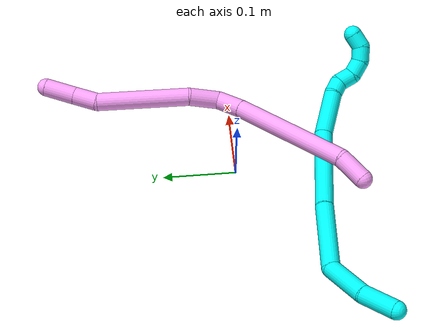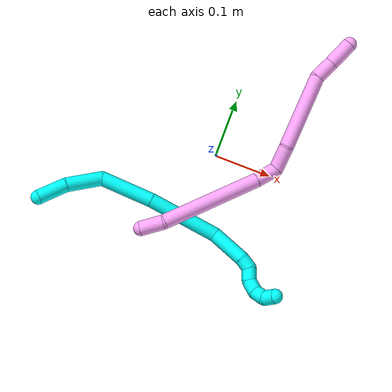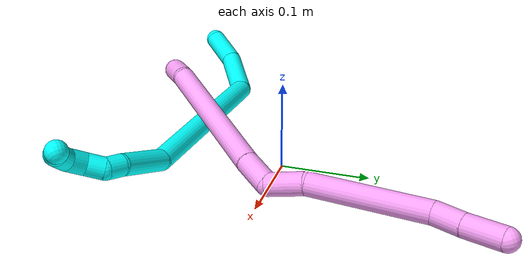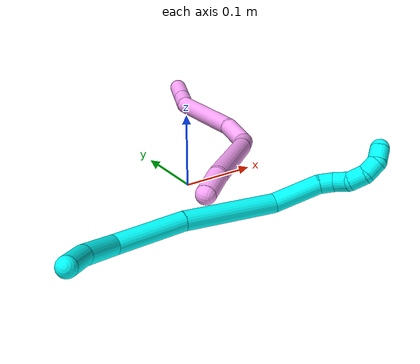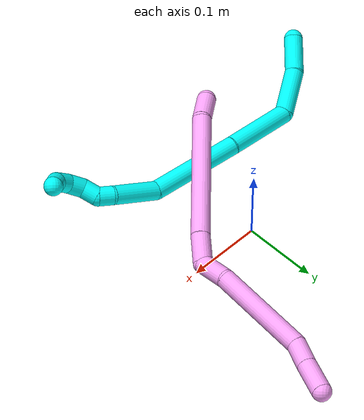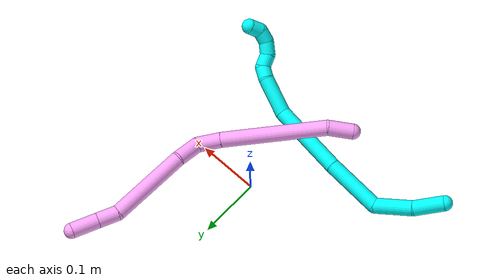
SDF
<sdf version="1.7">
 <world name="default">
  <model name="3">
   <static>0</static>
   <link name="3">
    <collision name="collision-cylinder-e_1_1_4">
     <pose>0.004738 0.006474 -0.023976 -2.87787 0.188524 -1.23854</pose>
     <geometry><cylinder><radius>0.0125</radius><length>0.050564</length></cylinder></geometry>
     <surface>
      <friction><ode><mu>1.16</mu><mu2>1.16</mu2><slip1>0</slip1><slip2>0</slip2></ode></friction>
      <contact><ode><kp>1e+06</kp><kd>1</kd><max_vel>0</max_vel><min_depth>0.001</min_depth></ode></contact>
     </surface>
    </collision>
    <visual name="visual-cylinder-e_1_1_4">
     <pose>0.004738 0.006474 -0.023976 -2.87787 0.188524 -1.23854</pose>
     <geometry><cylinder><radius>0.0125</radius><length>0.050564</length></cylinder></geometry>
     <material><ambient>0.003922 1 0.996078 1</ambient></material>
    </visual>
    <collision name="collision-cylinder-e_2_4_5">
     <pose>0.02131 0.016194 -0.077117 -3.03073 0.383308 -2.58455</pose>
     <geometry><cylinder><radius>0.0125</radius><length>0.063284</length></cylinder></geometry>
     <surface>
      <friction><ode><mu>1.16</mu><mu2>1.16</mu2><slip1>0</slip1><slip2>0</slip2></ode></friction>
      <contact><ode><kp>1e+06</kp><kd>1</kd><max_vel>0</max_vel><min_depth>0.001</min_depth></ode></contact>
     </surface>
    </collision>
    <visual name="visual-cylinder-e_2_4_5">
     <pose>0.02131 0.016194 -0.077117 -3.03073 0.383308 -2.58455</pose>
     <geometry><cylinder><radius>0.0125</radius><length>0.063284</length></cylinder></geometry>
     <material><ambient>0.003922 1 0.996078 1</ambient></material>
    </visual>
    <collision name="collision-cylinder-e_3_5_6">
     <pose>0.07338 0.016556 -0.129421 3.01757 1.04557 2.92693</pose>
     <geometry><cylinder><radius>0.0125</radius><length>0.093009</length></cylinder></geometry>
     <surface>
      <friction><ode><mu>1.16</mu><mu2>1.16</mu2><slip1>0</slip1><slip2>0</slip2></ode></friction>
      <contact><ode><kp>1e+06</kp><kd>1</kd><max_vel>0</max_vel><min_depth>0.001</min_depth></ode></contact>
     </surface>
    </collision>
    <visual name="visual-cylinder-e_3_5_6">
     <pose>0.07338 0.016556 -0.129421 3.01757 1.04557 2.92693</pose>
     <geometry><cylinder><radius>0.0125</radius><length>0.093009</length></cylinder></geometry>
     <material><ambient>0.003922 1 0.996078 1</ambient></material>
    </visual>
    <collision name="collision-cylinder-e_4_6_7">
     <pose>0.166427 0.00204 -0.183348 2.78037 1.01349 2.50598</pose>
     <geometry><cylinder><radius>0.0125</radius><length>0.124453</length></cylinder></geometry>
     <surface>
      <friction><ode><mu>1.16</mu><mu2>1.16</mu2><slip1>0</slip1><slip2>0</slip2></ode></friction>
      <contact><ode><kp>1e+06</kp><kd>1</kd><max_vel>0</max_vel><min_depth>0.001</min_depth></ode></contact>
     </surface>
    </collision>
    <visual name="visual-cylinder-e_4_6_7">
     <pose>0.166427 0.00204 -0.183348 2.78037 1.01349 2.50598</pose>
     <geometry><cylinder><radius>0.0125</radius><length>0.124453</length></cylinder></geometry>
     <material><ambient>0.003922 1 0.996078 1</ambient></material>
    </visual>
    <collision name="collision-cylinder-e_5_7_8">
     <pose>0.250146 -0.012168 -0.218253 2.58246 1.41494 2.4938</pose>
     <geometry><cylinder><radius>0.0125</radius><length>0.062577</length></cylinder></geometry>
     <surface>
      <friction><ode><mu>1.16</mu><mu2>1.16</mu2><slip1>0</slip1><slip2>0</slip2></ode></friction>
      <contact><ode><kp>1e+06</kp><kd>1</kd><max_vel>0</max_vel><min_depth>0.001</min_depth></ode></contact>
     </surface>
    </collision>
    <visual name="visual-cylinder-e_5_7_8">
     <pose>0.250146 -0.012168 -0.218253 2.58246 1.41494 2.4938</pose>
     <geometry><cylinder><radius>0.0125</radius><length>0.062577</length></cylinder></geometry>
     <material><ambient>0.003922 1 0.996078 1</ambient></material>
    </visual>
    <collision name="collision-cylinder-e_6_8_9">
     <pose>0.290566 -0.018276 -0.223282 1.8233 1.20463 1.45168</pose>
     <geometry><cylinder><radius>0.0125</radius><length>0.020373</length></cylinder></geometry>
     <surface>
      <friction><ode><mu>1.16</mu><mu2>1.16</mu2><slip1>0</slip1><slip2>0</slip2></ode></friction>
      <contact><ode><kp>1e+06</kp><kd>1</kd><max_vel>0</max_vel><min_depth>0.001</min_depth></ode></contact>
     </surface>
    </collision>
    <visual name="visual-cylinder-e_6_8_9">
     <pose>0.290566 -0.018276 -0.223282 1.8233 1.20463 1.45168</pose>
     <geometry><cylinder><radius>0.0125</radius><length>0.020373</length></cylinder></geometry>
     <material><ambient>0.003922 1 0.996078 1</ambient></material>
    </visual>
    <collision name="collision-cylinder-e_7_9_10">
     <pose>0.307953 -0.027057 -0.218477 0.742966 0.79278 0.32326</pose>
     <geometry><cylinder><radius>0.0125</radius><length>0.022115</length></cylinder></geometry>
     <surface>
      <friction><ode><mu>1.16</mu><mu2>1.16</mu2><slip1>0</slip1><slip2>0</slip2></ode></friction>
      <contact><ode><kp>1e+06</kp><kd>1</kd><max_vel>0</max_vel><min_depth>0.001</min_depth></ode></contact>
     </surface>
    </collision>
    <visual name="visual-cylinder-e_7_9_10">
     <pose>0.307953 -0.027057 -0.218477 0.742966 0.79278 0.32326</pose>
     <geometry><cylinder><radius>0.0125</radius><length>0.022115</length></cylinder></geometry>
     <material><ambient>0.003922 1 0.996078 1</ambient></material>
    </visual>
    <collision name="collision-cylinder-e_8_10_11">
     <pose>0.326503 -0.03355 -0.210137 0.442183 1.3052 0.340262</pose>
     <geometry><cylinder><radius>0.0125</radius><length>0.022122</length></cylinder></geometry>
     <surface>
      <friction><ode><mu>1.16</mu><mu2>1.16</mu2><slip1>0</slip1><slip2>0</slip2></ode></friction>
      <contact><ode><kp>1e+06</kp><kd>1</kd><max_vel>0</max_vel><min_depth>0.001</min_depth></ode></contact>
     </surface>
    </collision>
    <visual name="visual-cylinder-e_8_10_11">
     <pose>0.326503 -0.03355 -0.210137 0.442183 1.3052 0.340262</pose>
     <geometry><cylinder><radius>0.0125</radius><length>0.022122</length></cylinder></geometry>
     <material><ambient>0.003922 1 0.996078 1</ambient></material>
    </visual>
    <collision name="collision-cylinder-e_9_11_12">
     <pose>0.347088 -0.031614 -0.207337 -1.51535 1.26005 -1.2077</pose>
     <geometry><cylinder><radius>0.0125</radius><length>0.02082</length></cylinder></geometry>
     <surface>
      <friction><ode><mu>1.16</mu><mu2>1.16</mu2><slip1>0</slip1><slip2>0</slip2></ode></friction>
      <contact><ode><kp>1e+06</kp><kd>1</kd><max_vel>0</max_vel><min_depth>0.001</min_depth></ode></contact>
     </surface>
    </collision>
    <visual name="visual-cylinder-e_9_11_12">
     <pose>0.347088 -0.031614 -0.207337 -1.51535 1.26005 -1.2077</pose>
     <geometry><cylinder><radius>0.0125</radius><length>0.02082</length></cylinder></geometry>
     <material><ambient>0.003922 1 0.996078 1</ambient></material>
    </visual>
    <collision name="collision-cylinder-e_10_12_2">
     <pose>0.363429 -0.02122 -0.210839 -2.04223 0.670968 -1.03477</pose>
     <geometry><cylinder><radius>0.0125</radius><length>0.020683</length></cylinder></geometry>
     <surface>
      <friction><ode><mu>1.16</mu><mu2>1.16</mu2><slip1>0</slip1><slip2>0</slip2></ode></friction>
      <contact><ode><kp>1e+06</kp><kd>1</kd><max_vel>0</max_vel><min_depth>0.001</min_depth></ode></contact>
     </surface>
    </collision>
    <visual name="visual-cylinder-e_10_12_2">
     <pose>0.363429 -0.02122 -0.210839 -2.04223 0.670968 -1.03477</pose>
     <geometry><cylinder><radius>0.0125</radius><length>0.020683</length></cylinder></geometry>
     <material><ambient>0.003922 1 0.996078 1</ambient></material>
    </visual>
    <collision name="collision-sphere-2">
     <pose>0.369859 -0.014004 -0.214517 0 -0 0</pose>
     <geometry><sphere><radius>0.0125</radius></sphere></geometry>
     <surface>
      <friction><ode><mu>1.16</mu><mu2>1.16</mu2><slip1>0</slip1><slip2>0</slip2></ode></friction>
      <contact><ode><kp>1e+06</kp><kd>1</kd><max_vel>0</max_vel><min_depth>0.001</min_depth></ode></contact>
     </surface>
    </collision>
    <visual name="visual-sphere-2">
     <pose>0.369859 -0.014004 -0.214517 0 -0 0</pose>
     <geometry><sphere><radius>0.0125</radius></sphere></geometry>
     <material><ambient>0.003922 1 0.996078 1</ambient></material>
    </visual>
    <collision name="collision-sphere-12">
     <pose>0.357 -0.028436 -0.20716 0 -0 0</pose>
     <geometry><sphere><radius>0.0125</radius></sphere></geometry>
     <surface>
      <friction><ode><mu>1.16</mu><mu2>1.16</mu2><slip1>0</slip1><slip2>0</slip2></ode></friction>
      <contact><ode><kp>1e+06</kp><kd>1</kd><max_vel>0</max_vel><min_depth>0.001</min_depth></ode></contact>
     </surface>
    </collision>
    <visual name="visual-sphere-12">
     <pose>0.357 -0.028436 -0.20716 0 -0 0</pose>
     <geometry><sphere><radius>0.0125</radius></sphere></geometry>
     <material><ambient>0.003922 1 0.996078 1</ambient></material>
    </visual>
    <collision name="collision-sphere-11">
     <pose>0.337176 -0.034792 -0.207513 0 -0 0</pose>
     <geometry><sphere><radius>0.0125</radius></sphere></geometry>
     <surface>
      <friction><ode><mu>1.16</mu><mu2>1.16</mu2><slip1>0</slip1><slip2>0</slip2></ode></friction>
      <contact><ode><kp>1e+06</kp><kd>1</kd><max_vel>0</max_vel><min_depth>0.001</min_depth></ode></contact>
     </surface>
    </collision>
    <visual name="visual-sphere-11">
     <pose>0.337176 -0.034792 -0.207513 0 -0 0</pose>
     <geometry><sphere><radius>0.0125</radius></sphere></geometry>
     <material><ambient>0.003922 1 0.996078 1</ambient></material>
    </visual>
    <collision name="collision-sphere-10">
     <pose>0.31583 -0.032308 -0.212761 0 -0 0</pose>
     <geometry><sphere><radius>0.0125</radius></sphere></geometry>
     <surface>
      <friction><ode><mu>1.16</mu><mu2>1.16</mu2><slip1>0</slip1><slip2>0</slip2></ode></friction>
      <contact><ode><kp>1e+06</kp><kd>1</kd><max_vel>0</max_vel><min_depth>0.001</min_depth></ode></contact>
     </surface>
    </collision>
    <visual name="visual-sphere-10">
     <pose>0.31583 -0.032308 -0.212761 0 -0 0</pose>
     <geometry><sphere><radius>0.0125</radius></sphere></geometry>
     <material><ambient>0.003922 1 0.996078 1</ambient></material>
    </visual>
    <collision name="collision-sphere-9">
     <pose>0.300077 -0.021807 -0.224193 0 -0 0</pose>
     <geometry><sphere><radius>0.0125</radius></sphere></geometry>
     <surface>
      <friction><ode><mu>1.16</mu><mu2>1.16</mu2><slip1>0</slip1><slip2>0</slip2></ode></friction>
      <contact><ode><kp>1e+06</kp><kd>1</kd><max_vel>0</max_vel><min_depth>0.001</min_depth></ode></contact>
     </surface>
    </collision>
    <visual name="visual-sphere-9">
     <pose>0.300077 -0.021807 -0.224193 0 -0 0</pose>
     <geometry><sphere><radius>0.0125</radius></sphere></geometry>
     <material><ambient>0.003922 1 0.996078 1</ambient></material>
    </visual>
    <collision name="collision-sphere-4">
     <pose>0.009476 0.012948 -0.047951 0 -0 0</pose>
     <geometry><sphere><radius>0.0125</radius></sphere></geometry>
     <surface>
      <friction><ode><mu>1.16</mu><mu2>1.16</mu2><slip1>0</slip1><slip2>0</slip2></ode></friction>
      <contact><ode><kp>1e+06</kp><kd>1</kd><max_vel>0</max_vel><min_depth>0.001</min_depth></ode></contact>
     </surface>
    </collision>
    <visual name="visual-sphere-4">
     <pose>0.009476 0.012948 -0.047951 0 -0 0</pose>
     <geometry><sphere><radius>0.0125</radius></sphere></geometry>
     <material><ambient>0.003922 1 0.996078 1</ambient></material>
    </visual>
    <collision name="collision-sphere-1">
     <geometry><sphere><radius>0.0125</radius></sphere></geometry>
     <surface>
      <friction><ode><mu>1.16</mu><mu2>1.16</mu2><slip1>0</slip1><slip2>0</slip2></ode></friction>
      <contact><ode><kp>1e+06</kp><kd>1</kd><max_vel>0</max_vel><min_depth>0.001</min_depth></ode></contact>
     </surface>
    </collision>
    <visual name="visual-sphere-1">
     <geometry><sphere><radius>0.0125</radius></sphere></geometry>
     <material><ambient>0.003922 1 0.996078 1</ambient></material>
    </visual>
    <collision name="collision-sphere-8">
     <pose>0.281055 -0.014744 -0.22237 0 -0 0</pose>
     <geometry><sphere><radius>0.0125</radius></sphere></geometry>
     <surface>
      <friction><ode><mu>1.16</mu><mu2>1.16</mu2><slip1>0</slip1><slip2>0</slip2></ode></friction>
      <contact><ode><kp>1e+06</kp><kd>1</kd><max_vel>0</max_vel><min_depth>0.001</min_depth></ode></contact>
     </surface>
    </collision>
    <visual name="visual-sphere-8">
     <pose>0.281055 -0.014744 -0.22237 0 -0 0</pose>
     <geometry><sphere><radius>0.0125</radius></sphere></geometry>
     <material><ambient>0.003922 1 0.996078 1</ambient></material>
    </visual>
    <collision name="collision-sphere-5">
     <pose>0.033144 0.019441 -0.106283 0 -0 0</pose>
     <geometry><sphere><radius>0.0125</radius></sphere></geometry>
     <surface>
      <friction><ode><mu>1.16</mu><mu2>1.16</mu2><slip1>0</slip1><slip2>0</slip2></ode></friction>
      <contact><ode><kp>1e+06</kp><kd>1</kd><max_vel>0</max_vel><min_depth>0.001</min_depth></ode></contact>
     </surface>
    </collision>
    <visual name="visual-sphere-5">
     <pose>0.033144 0.019441 -0.106283 0 -0 0</pose>
     <geometry><sphere><radius>0.0125</radius></sphere></geometry>
     <material><ambient>0.003922 1 0.996078 1</ambient></material>
    </visual>
    <collision name="collision-sphere-6">
     <pose>0.113616 0.013672 -0.15256 0 -0 0</pose>
     <geometry><sphere><radius>0.0125</radius></sphere></geometry>
     <surface>
      <friction><ode><mu>1.16</mu><mu2>1.16</mu2><slip1>0</slip1><slip2>0</slip2></ode></friction>
      <contact><ode><kp>1e+06</kp><kd>1</kd><max_vel>0</max_vel><min_depth>0.001</min_depth></ode></contact>
     </surface>
    </collision>
    <visual name="visual-sphere-6">
     <pose>0.113616 0.013672 -0.15256 0 -0 0</pose>
     <geometry><sphere><radius>0.0125</radius></sphere></geometry>
     <material><ambient>0.003922 1 0.996078 1</ambient></material>
    </visual>
    <collision name="collision-sphere-7">
     <pose>0.219237 -0.009592 -0.214136 0 -0 0</pose>
     <geometry><sphere><radius>0.0125</radius></sphere></geometry>
     <surface>
      <friction><ode><mu>1.16</mu><mu2>1.16</mu2><slip1>0</slip1><slip2>0</slip2></ode></friction>
      <contact><ode><kp>1e+06</kp><kd>1</kd><max_vel>0</max_vel><min_depth>0.001</min_depth></ode></contact>
     </surface>
    </collision>
    <visual name="visual-sphere-7">
     <pose>0.219237 -0.009592 -0.214136 0 -0 0</pose>
     <geometry><sphere><radius>0.0125</radius></sphere></geometry>
     <material><ambient>0.003922 1 0.996078 1</ambient></material>
    </visual>
    <inertial>
     <pose>0.15895 -0.000851 -0.154625 0 -0 0</pose>
     <mass>0.5</mass>
     <inertia>
      <ixx>-5.3e-05</ixx>
      <ixy>0</ixy>
      <ixz>0</ixz>
      <iyy>0.000307</iyy>
      <iyz>0</iyz>
      <izz>-0.000227</izz>
     </inertia>
    </inertial>
   </link>
   <pose>-0.254771 -0.171972 0.044898 0.871242 -0.457654 -0.397827</pose>
  </model>
  <model name="4">
   <static>0</static>
   <link name="4">
    <collision name="collision-cylinder-e_1_1_4">
     <pose>0.013845 0.014269 0.00273 -1.38175 0.761332 -0.639075</pose>
     <geometry><cylinder><radius>0.0125</radius><length>0.040137</length></cylinder></geometry>
     <surface>
      <friction><ode><mu>1.16</mu><mu2>1.16</mu2><slip1>0</slip1><slip2>0</slip2></ode></friction>
      <contact><ode><kp>1e+06</kp><kd>1</kd><max_vel>0</max_vel><min_depth>0.001</min_depth></ode></contact>
     </surface>
    </collision>
    <visual name="visual-cylinder-e_1_1_4">
     <pose>0.013845 0.014269 0.00273 -1.38175 0.761332 -0.639075</pose>
     <geometry><cylinder><radius>0.0125</radius><length>0.040137</length></cylinder></geometry>
     <material><ambient>1 0.65098 0.996078 1</ambient></material>
    </visual>
    <collision name="collision-cylinder-e_2_4_5">
     <pose>0.06127 0.105758 0.022386 -1.35502 0.401685 -0.324708</pose>
     <geometry><cylinder><radius>0.0125</radius><length>0.17178</length></cylinder></geometry>
     <surface>
      <friction><ode><mu>1.16</mu><mu2>1.16</mu2><slip1>0</slip1><slip2>0</slip2></ode></friction>
      <contact><ode><kp>1e+06</kp><kd>1</kd><max_vel>0</max_vel><min_depth>0.001</min_depth></ode></contact>
     </surface>
    </collision>
    <visual name="visual-cylinder-e_2_4_5">
     <pose>0.06127 0.105758 0.022386 -1.35502 0.401685 -0.324708</pose>
     <geometry><cylinder><radius>0.0125</radius><length>0.17178</length></cylinder></geometry>
     <material><ambient>1 0.65098 0.996078 1</ambient></material>
    </visual>
    <collision name="collision-cylinder-e_3_5_6">
     <pose>0.10178 0.200797 0.044796 -1.27223 0.355848 -0.264064</pose>
     <geometry><cylinder><radius>0.0125</radius><length>0.039777</length></cylinder></geometry>
     <surface>
      <friction><ode><mu>1.16</mu><mu2>1.16</mu2><slip1>0</slip1><slip2>0</slip2></ode></friction>
      <contact><ode><kp>1e+06</kp><kd>1</kd><max_vel>0</max_vel><min_depth>0.001</min_depth></ode></contact>
     </surface>
    </collision>
    <visual name="visual-cylinder-e_3_5_6">
     <pose>0.10178 0.200797 0.044796 -1.27223 0.355848 -0.264064</pose>
     <geometry><cylinder><radius>0.0125</radius><length>0.039777</length></cylinder></geometry>
     <material><ambient>1 0.65098 0.996078 1</ambient></material>
    </visual>
    <collision name="collision-cylinder-e_4_6_7">
     <pose>0.11654 0.227017 0.068032 -0.442082 0.379415 -0.086244</pose>
     <geometry><cylinder><radius>0.0125</radius><length>0.042288</length></cylinder></geometry>
     <surface>
      <friction><ode><mu>1.16</mu><mu2>1.16</mu2><slip1>0</slip1><slip2>0</slip2></ode></friction>
      <contact><ode><kp>1e+06</kp><kd>1</kd><max_vel>0</max_vel><min_depth>0.001</min_depth></ode></contact>
     </surface>
    </collision>
    <visual name="visual-cylinder-e_4_6_7">
     <pose>0.11654 0.227017 0.068032 -0.442082 0.379415 -0.086244</pose>
     <geometry><cylinder><radius>0.0125</radius><length>0.042288</length></cylinder></geometry>
     <material><ambient>1 0.65098 0.996078 1</ambient></material>
    </visual>
    <collision name="collision-cylinder-e_5_7_8">
     <pose>0.134837 0.272185 0.137496 -0.618048 0.163476 -0.052295</pose>
     <geometry><cylinder><radius>0.0125</radius><length>0.128612</length></cylinder></geometry>
     <surface>
      <friction><ode><mu>1.16</mu><mu2>1.16</mu2><slip1>0</slip1><slip2>0</slip2></ode></friction>
      <contact><ode><kp>1e+06</kp><kd>1</kd><max_vel>0</max_vel><min_depth>0.001</min_depth></ode></contact>
     </surface>
    </collision>
    <visual name="visual-cylinder-e_5_7_8">
     <pose>0.134837 0.272185 0.137496 -0.618048 0.163476 -0.052295</pose>
     <geometry><cylinder><radius>0.0125</radius><length>0.128612</length></cylinder></geometry>
     <material><ambient>1 0.65098 0.996078 1</ambient></material>
    </visual>
    <collision name="collision-cylinder-e_6_8_9">
     <pose>0.152186 0.321141 0.198702 -0.909117 0.419093 -0.207114</pose>
     <geometry><cylinder><radius>0.0125</radius><length>0.033833</length></cylinder></geometry>
     <surface>
      <friction><ode><mu>1.16</mu><mu2>1.16</mu2><slip1>0</slip1><slip2>0</slip2></ode></friction>
      <contact><ode><kp>1e+06</kp><kd>1</kd><max_vel>0</max_vel><min_depth>0.001</min_depth></ode></contact>
     </surface>
    </collision>
    <visual name="visual-cylinder-e_6_8_9">
     <pose>0.152186 0.321141 0.198702 -0.909117 0.419093 -0.207114</pose>
     <geometry><cylinder><radius>0.0125</radius><length>0.033833</length></cylinder></geometry>
     <material><ambient>1 0.65098 0.996078 1</ambient></material>
    </visual>
    <collision name="collision-cylinder-e_7_9_2">
     <pose>0.168578 0.348032 0.221164 -0.84793 0.45161 -0.206626</pose>
     <geometry><cylinder><radius>0.0125</radius><length>0.043572</length></cylinder></geometry>
     <surface>
      <friction><ode><mu>1.16</mu><mu2>1.16</mu2><slip1>0</slip1><slip2>0</slip2></ode></friction>
      <contact><ode><kp>1e+06</kp><kd>1</kd><max_vel>0</max_vel><min_depth>0.001</min_depth></ode></contact>
     </surface>
    </collision>
    <visual name="visual-cylinder-e_7_9_2">
     <pose>0.168578 0.348032 0.221164 -0.84793 0.45161 -0.206626</pose>
     <geometry><cylinder><radius>0.0125</radius><length>0.043572</length></cylinder></geometry>
     <material><ambient>1 0.65098 0.996078 1</ambient></material>
    </visual>
    <collision name="collision-sphere-2">
     <pose>0.178086 0.362732 0.234132 0 -0 0</pose>
     <geometry><sphere><radius>0.0125</radius></sphere></geometry>
     <surface>
      <friction><ode><mu>1.16</mu><mu2>1.16</mu2><slip1>0</slip1><slip2>0</slip2></ode></friction>
      <contact><ode><kp>1e+06</kp><kd>1</kd><max_vel>0</max_vel><min_depth>0.001</min_depth></ode></contact>
     </surface>
    </collision>
    <visual name="visual-sphere-2">
     <pose>0.178086 0.362732 0.234132 0 -0 0</pose>
     <geometry><sphere><radius>0.0125</radius></sphere></geometry>
     <material><ambient>1 0.65098 0.996078 1</ambient></material>
    </visual>
    <collision name="collision-sphere-9">
     <pose>0.15907 0.333333 0.208197 0 -0 0</pose>
     <geometry><sphere><radius>0.0125</radius></sphere></geometry>
     <surface>
      <friction><ode><mu>1.16</mu><mu2>1.16</mu2><slip1>0</slip1><slip2>0</slip2></ode></friction>
      <contact><ode><kp>1e+06</kp><kd>1</kd><max_vel>0</max_vel><min_depth>0.001</min_depth></ode></contact>
     </surface>
    </collision>
    <visual name="visual-sphere-9">
     <pose>0.15907 0.333333 0.208197 0 -0 0</pose>
     <geometry><sphere><radius>0.0125</radius></sphere></geometry>
     <material><ambient>1 0.65098 0.996078 1</ambient></material>
    </visual>
    <collision name="collision-sphere-4">
     <pose>0.02769 0.028538 0.00546 0 -0 0</pose>
     <geometry><sphere><radius>0.0125</radius></sphere></geometry>
     <surface>
      <friction><ode><mu>1.16</mu><mu2>1.16</mu2><slip1>0</slip1><slip2>0</slip2></ode></friction>
      <contact><ode><kp>1e+06</kp><kd>1</kd><max_vel>0</max_vel><min_depth>0.001</min_depth></ode></contact>
     </surface>
    </collision>
    <visual name="visual-sphere-4">
     <pose>0.02769 0.028538 0.00546 0 -0 0</pose>
     <geometry><sphere><radius>0.0125</radius></sphere></geometry>
     <material><ambient>1 0.65098 0.996078 1</ambient></material>
    </visual>
    <collision name="collision-sphere-1">
     <geometry><sphere><radius>0.0125</radius></sphere></geometry>
     <surface>
      <friction><ode><mu>1.16</mu><mu2>1.16</mu2><slip1>0</slip1><slip2>0</slip2></ode></friction>
      <contact><ode><kp>1e+06</kp><kd>1</kd><max_vel>0</max_vel><min_depth>0.001</min_depth></ode></contact>
     </surface>
    </collision>
    <visual name="visual-sphere-1">
     <geometry><sphere><radius>0.0125</radius></sphere></geometry>
     <material><ambient>1 0.65098 0.996078 1</ambient></material>
    </visual>
    <collision name="collision-sphere-8">
     <pose>0.145303 0.30895 0.189207 0 -0 0</pose>
     <geometry><sphere><radius>0.0125</radius></sphere></geometry>
     <surface>
      <friction><ode><mu>1.16</mu><mu2>1.16</mu2><slip1>0</slip1><slip2>0</slip2></ode></friction>
      <contact><ode><kp>1e+06</kp><kd>1</kd><max_vel>0</max_vel><min_depth>0.001</min_depth></ode></contact>
     </surface>
    </collision>
    <visual name="visual-sphere-8">
     <pose>0.145303 0.30895 0.189207 0 -0 0</pose>
     <geometry><sphere><radius>0.0125</radius></sphere></geometry>
     <material><ambient>1 0.65098 0.996078 1</ambient></material>
    </visual>
    <collision name="collision-sphere-5">
     <pose>0.094851 0.182979 0.039312 0 -0 0</pose>
     <geometry><sphere><radius>0.0125</radius></sphere></geometry>
     <surface>
      <friction><ode><mu>1.16</mu><mu2>1.16</mu2><slip1>0</slip1><slip2>0</slip2></ode></friction>
      <contact><ode><kp>1e+06</kp><kd>1</kd><max_vel>0</max_vel><min_depth>0.001</min_depth></ode></contact>
     </surface>
    </collision>
    <visual name="visual-sphere-5">
     <pose>0.094851 0.182979 0.039312 0 -0 0</pose>
     <geometry><sphere><radius>0.0125</radius></sphere></geometry>
     <material><ambient>1 0.65098 0.996078 1</ambient></material>
    </visual>
    <collision name="collision-sphere-6">
     <pose>0.108709 0.218615 0.05028 0 -0 0</pose>
     <geometry><sphere><radius>0.0125</radius></sphere></geometry>
     <surface>
      <friction><ode><mu>1.16</mu><mu2>1.16</mu2><slip1>0</slip1><slip2>0</slip2></ode></friction>
      <contact><ode><kp>1e+06</kp><kd>1</kd><max_vel>0</max_vel><min_depth>0.001</min_depth></ode></contact>
     </surface>
    </collision>
    <visual name="visual-sphere-6">
     <pose>0.108709 0.218615 0.05028 0 -0 0</pose>
     <geometry><sphere><radius>0.0125</radius></sphere></geometry>
     <material><ambient>1 0.65098 0.996078 1</ambient></material>
    </visual>
    <collision name="collision-sphere-7">
     <pose>0.124371 0.23542 0.085784 0 -0 0</pose>
     <geometry><sphere><radius>0.0125</radius></sphere></geometry>
     <surface>
      <friction><ode><mu>1.16</mu><mu2>1.16</mu2><slip1>0</slip1><slip2>0</slip2></ode></friction>
      <contact><ode><kp>1e+06</kp><kd>1</kd><max_vel>0</max_vel><min_depth>0.001</min_depth></ode></contact>
     </surface>
    </collision>
    <visual name="visual-sphere-7">
     <pose>0.124371 0.23542 0.085784 0 -0 0</pose>
     <geometry><sphere><radius>0.0125</radius></sphere></geometry>
     <material><ambient>1 0.65098 0.996078 1</ambient></material>
    </visual>
    <inertial>
     <pose>0.099787 0.194726 0.085314 0 -0 0</pose>
     <mass>0.5</mass>
     <inertia>
      <ixx>0.000454</ixx>
      <ixy>0</ixy>
      <ixz>0</ixz>
      <iyy>0.000197</iyy>
      <iyz>0</iyz>
      <izz>-0.000708</izz>
     </inertia>
    </inertial>
   </link>
   <pose>-0.074125 -0.157397 0.070189 -1.24448 -0.885361 0.273137</pose>
  </model>
 </world>
</sdf>
